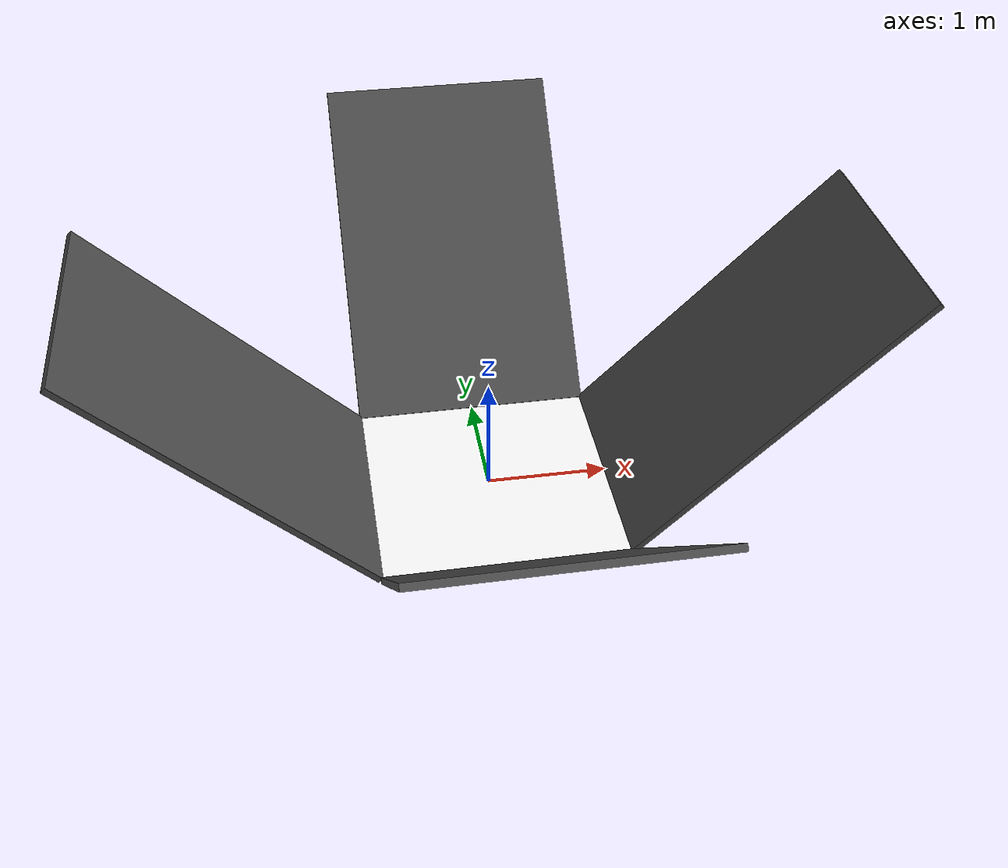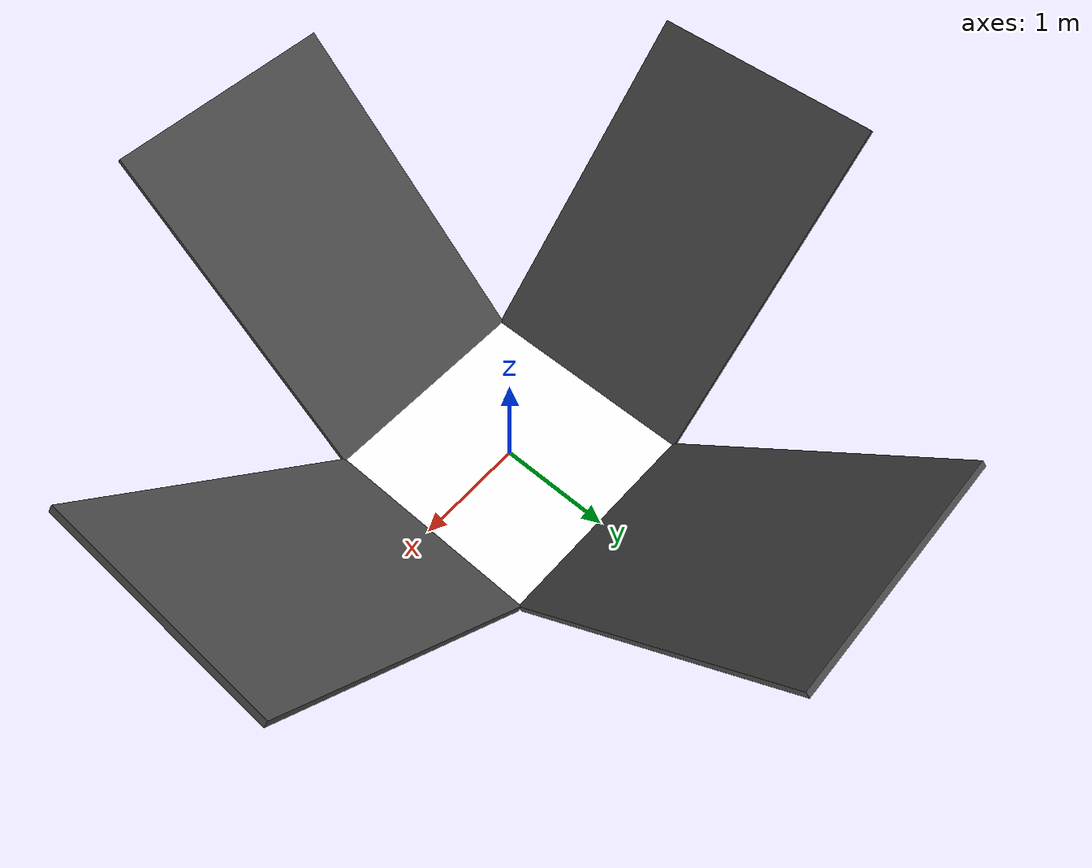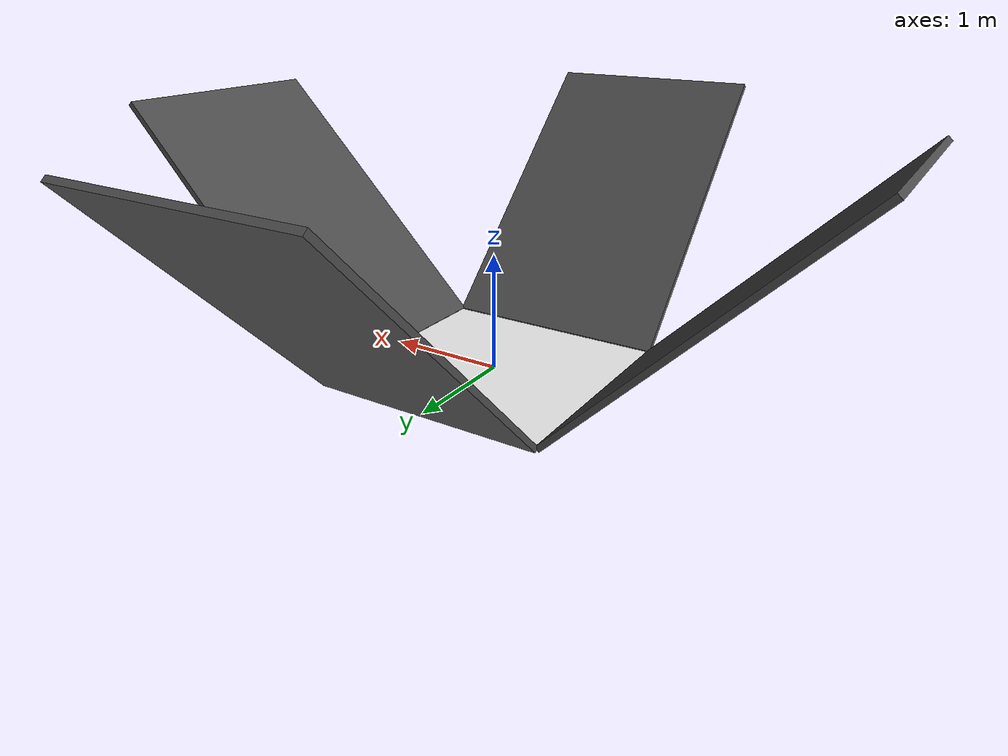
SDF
<?xml version="1.0" ?>
<sdf version="1.9">
  <model name="qr_target">
    <static>true</static>

    <link name="link">
      <visual name="visual">
        <geometry>
          <plane>
            <normal>0 0 1</normal>
            <size>2 2</size>
          </plane>
        </geometry>
        <material>
          <diffuse>1 1 1 1</diffuse>
          <specular>0 0 0 1</specular>
          <pbr>
            <metal>
              <albedo_map>materials/textures/qr_code.png</albedo_map>
            </metal>
          </pbr>
        </material>
      </visual>
    </link>

    <link name="plate_north">
      <pose>0 2.0606 1.0606 -0.785398 0 0</pose>
      <visual name="visual">
        <geometry>
          <box><size>2 0.05 3</size></box>
        </geometry>
        <material>
          <ambient>0.3 0.3 0.3 1</ambient>
          <diffuse>0.3 0.3 0.3 1</diffuse>
        </material>
      </visual>
    </link>

    <link name="plate_south">
      <pose>0 -2.0606 1.0606 0.785398 0 0</pose>
      <visual name="visual">
        <geometry>
          <box><size>2 0.05 3</size></box>
        </geometry>
        <material>
          <ambient>0.3 0.3 0.3 1</ambient>
          <diffuse>0.3 0.3 0.3 1</diffuse>
        </material>
      </visual>
    </link>

    <link name="plate_east">
      <pose>2.0606 0 1.0606 0 0.785398 0</pose>
      <visual name="visual">
        <geometry>
          <box><size>0.05 2 3</size></box>
        </geometry>
        <material>
          <ambient>0.3 0.3 0.3 1</ambient>
          <diffuse>0.3 0.3 0.3 1</diffuse>
        </material>
      </visual>
    </link>

    <link name="plate_west">
      <pose>-2.0606 0 1.0606 0 -0.785398 0</pose>
      <visual name="visual">
        <geometry>
          <box><size>0.05 2 3</size></box>
        </geometry>
        <material>
          <ambient>0.3 0.3 0.3 1</ambient>
          <diffuse>0.3 0.3 0.3 1</diffuse>
        </material>
      </visual>
    </link>

  </model>
</sdf>
